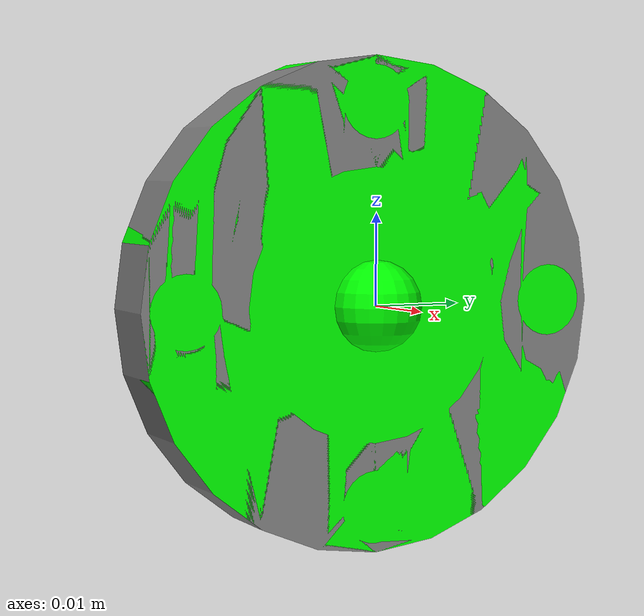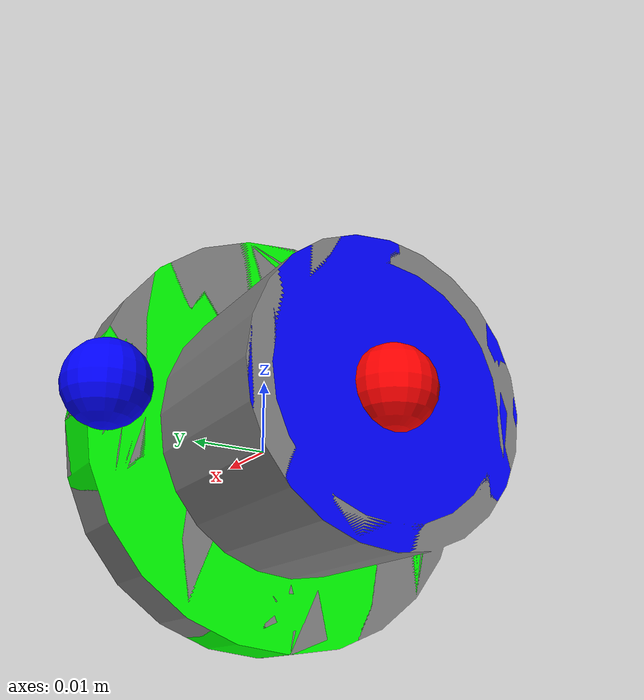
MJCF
<mujoco model="assy_part_07">
  <option noslip_iterations="20">
    <flag multiccd="enable"/>
  </option>
    <compiler angle="radian" />
    <size njmax="500" nconmax="100" />
    <asset>
        <mesh file="meshes/07_SBARB6200ZZ_30.stl" name="pulley_mesh" scale="0.001 0.001 0.001"/>
    </asset>
      <visual>
    <scale framewidth='.05' framelength='.3'/>
  </visual>
    <worldbody>
        <body>
            <body name="object">
                <geom pos="0 0 0" mesh="pulley_mesh" type="mesh" solimp="0.998 0.998 0.001" solref="0.001 1" density="4000" friction="0.95 0.3 0.1" group="0" contype="2" conaffinity="2"/>
                <geom type="cylinder" pos="-0.004 0 0.0" euler='0 1.57079632679 0' size="0.027 .004" rgba="0 1 0 1" solimp="0.998 0.998 0.001" solref="0.001 1" density="4000" friction="0.95 0.3 0.1" group="0" contype="0"/>
                <geom type="cylinder" pos="-0.019 0.0 0.0" euler='0 1.57079632679 0' size="0.017983 .011" rgba="0 0 1 1" solimp="0.998 0.998 0.001" solref="0.001 1" density="4000" friction="0.95 0.3 0.1" group="0" contype="0"/>
                <site rgba="1 1 0 1" size="0.003" pos="0 0 0" name="top_center_site"/>
            </body>
                <site rgba="1 0 0 1" size="0.005" pos="-0.03 0 0" name="bottom_site"/>
                <site rgba="0 1 0 1" size="0.005" pos="0 0.0 0" name="top_site"/>
                <site rgba="0 0 1 1" size="0.005" pos="-0.015 0.027 0" name="horizontal_radius_site"/>
        </body>
    </worldbody>
</mujoco>
